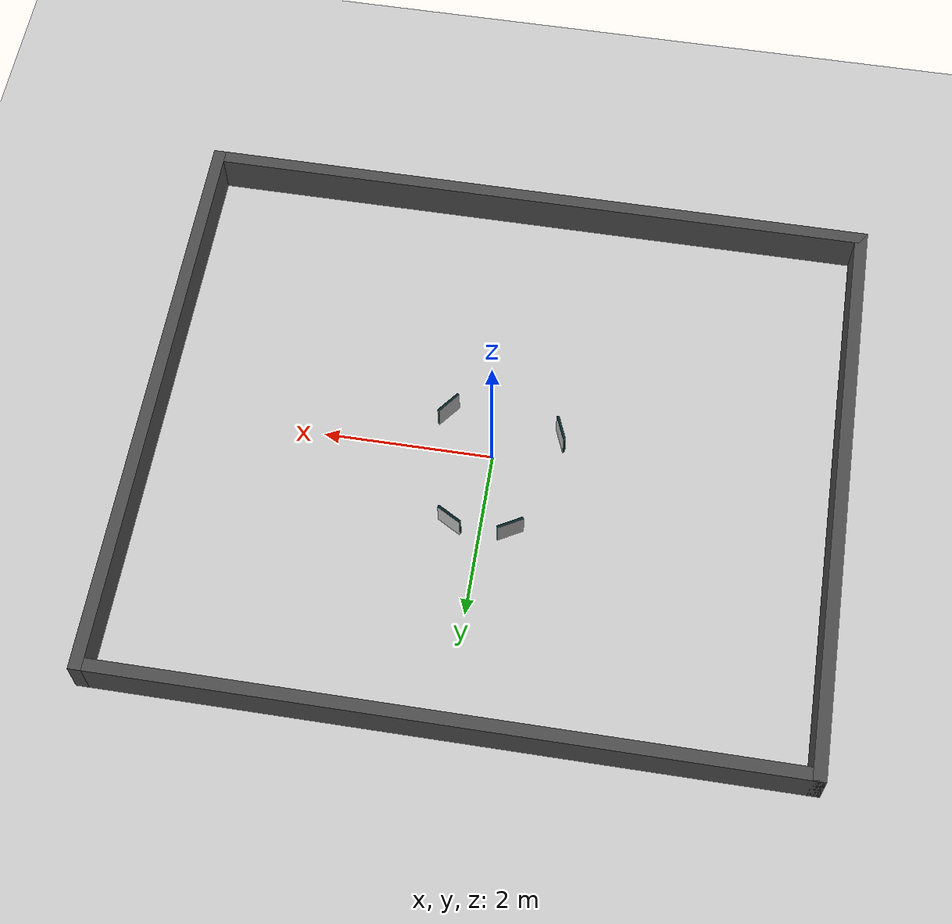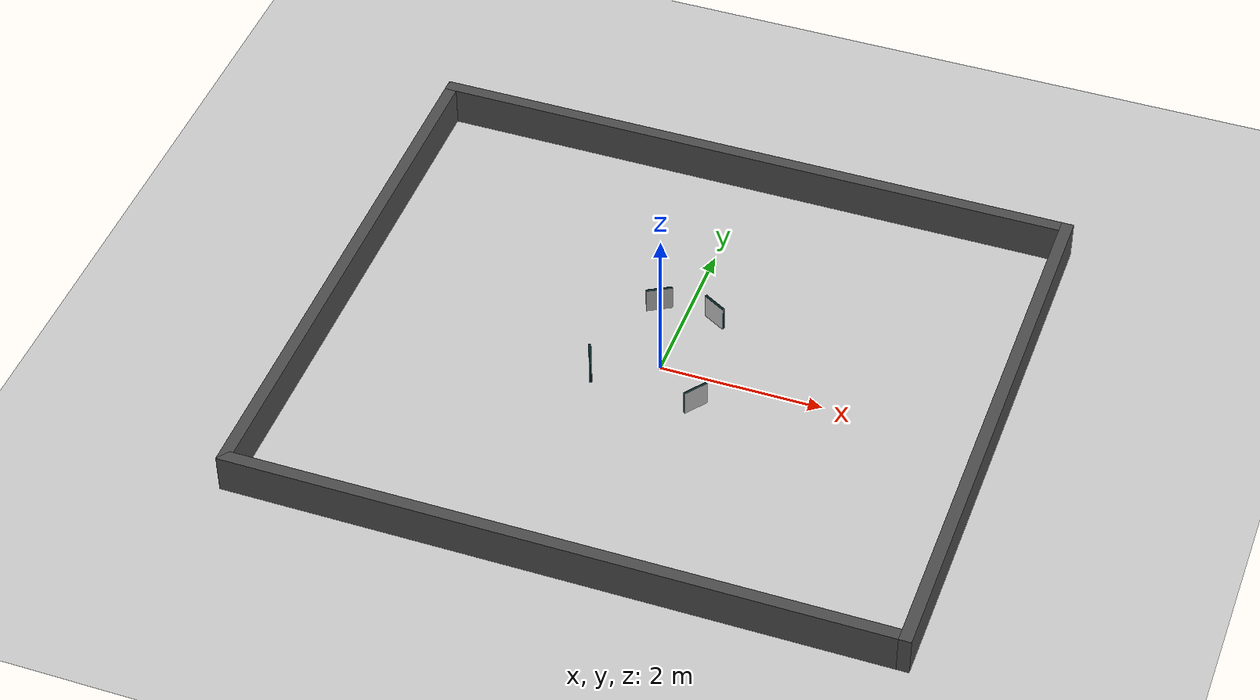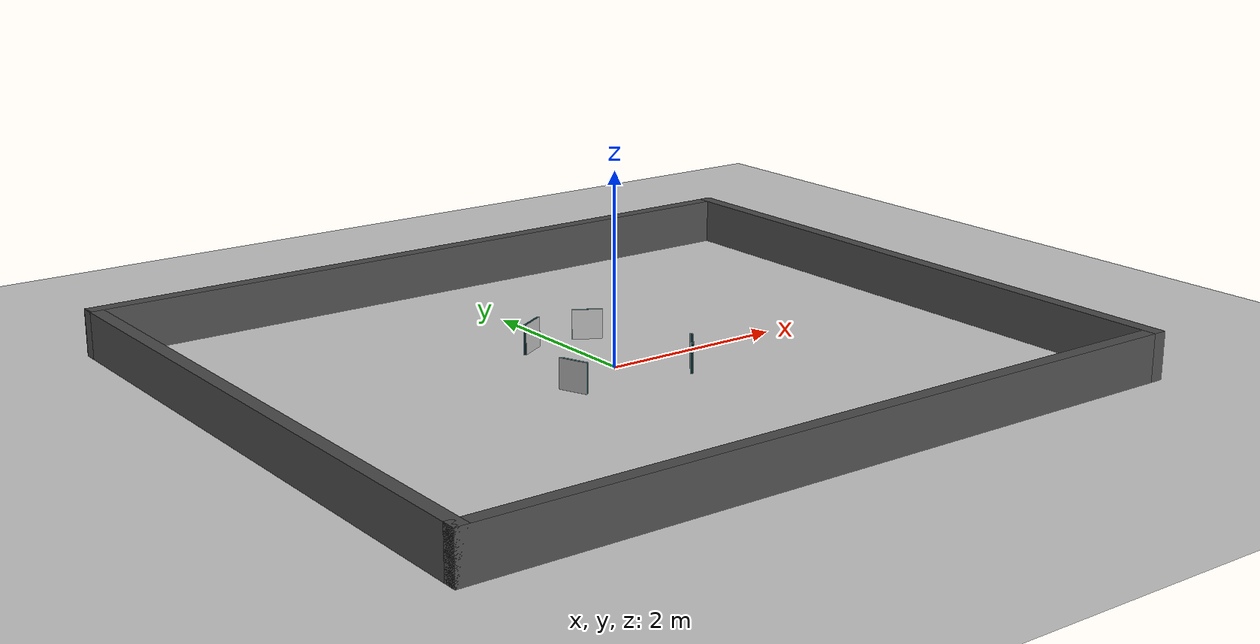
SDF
<sdf version="1.4">
  <world name="default">
    <scene>
      <ambient>0.8 0.8 0.8 1</ambient>
      <background>0.7 0.7 0.7 1</background>
      <shadows>true</shadows>
    </scene>

  <!-- A global light source  -->
    <include>
      <uri>model://sun</uri>
      <pose> -1.0 2.0 1.0 0 0 0</pose>
    </include>

  <!-- Piso da sala - circuito  e Paredes da Sala -->
    <include>
      <uri>model://ground_plane</uri> <!-- Piso plano sem nada - padrao do gazebo -->
    </include>
    <include>
      <uri>model://Walls/paredes_sala</uri>
      <pose> 4 0 0 0 0 0</pose>
    </include>
<!-- inicio da colagem dos blocos -->

<!-- Grupo 1 (0°) -->
<include>
  <uri>model://Yolo/wolf</uri>
  <name>wolf_1</name>
  <pose>-0.75 -0.35 0 0 0 -2.763631</pose>
</include>

<!-- Grupo 2 (60°) -->
<include>
  <uri>model://Yolo/cow</uri>
  <name>cow_1</name>
  <pose>0.35 0.95 0 0 0 1.048</pose>
</include>

<!-- Grupo 3 (120°) -->
<include>
  <uri>model://Yolo/bird</uri>
  <name>wolf_3</name>
  <pose>-0.35 0.95 0 0 0 2.094</pose>
</include>

<!-- Grupo 6 (300°) -->
<include>
  <uri>model://Yolo/bicycle</uri>
  <name>wolf_5</name>
  <pose>0.60 -0.48 0 0 0 2.4929</pose>
</include>

<!-- final da colagem dos blocos -->
    <physics type="ode">
      <real_time_update_rate>1000.0</real_time_update_rate>
      <max_step_size>0.001</max_step_size>
      <real_time_factor>1</real_time_factor>
      <ode>
        <solver>
          <type>quick</type>
          <iters>150</iters>
          <precon_iters>0</precon_iters>
          <sor>1.400000</sor>
          <use_dynamic_moi_rescaling>1</use_dynamic_moi_rescaling>
        </solver>
        <constraints>
          <cfm>0.00001</cfm>
          <erp>0.2</erp>
          <contact_max_correcting_vel>2000.000000</contact_max_correcting_vel>
          <contact_surface_layer>0.01000</contact_surface_layer>
        </constraints>
      </ode>
    </physics>

    <gui fullscreen='0'>
      <camera name='user_camera'>
        <pose frame=''>0.238775 -6.8831 10.8485 -0 0.979642 1.5602</pose>
        <view_controller>orbit</view_controller>
        <projection_type>perspective</projection_type>
      </camera>
    </gui>

  </world>

</sdf>

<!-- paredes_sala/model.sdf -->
<sdf version='1.7'>
  <model name='parede'>
    <link name='Wall_0'>
      <pose>-4.075 -3.425 0.25 0 0 0</pose>
      <self_collide>0</self_collide>
      <enable_wind>0</enable_wind>
      <kinematic>0</kinematic>
      <visual name='Wall_0_Visual'>
        <geometry>
          <box>
            <size>8 0.15 0.5</size>
          </box>
        </geometry>
        <material>
          <script>
            <uri>file://media/materials/scripts/gazebo.material</uri>
            <name>Gazebo/DarkGrey</name>
          </script>
          <ambient>0.5 0.5 0.5 1</ambient>
          <diffuse>1 1 1 1</diffuse>
          <specular>0.2 0.2 0.2 1</specular>
          <emissive>0 0 0 1</emissive>
          <shader type='pixel'/>
        </material>
      </visual>
      <collision name='Wall_0_Collision'>
        <laser_retro>0</laser_retro>
        <max_contacts>10</max_contacts>
        <geometry>
          <box>
            <size>8 0.15 0.5</size>
          </box>
        </geometry>
        <surface>
          <friction>
            <ode>
              <mu>1</mu>
              <mu2>1</mu2>
              <fdir1>0 0 0</fdir1>
              <slip1>0</slip1>
              <slip2>0</slip2>
            </ode>
            <torsional>
              <coefficient>1</coefficient>
              <patch_radius>0</patch_radius>
              <surface_radius>0</surface_radius>
              <use_patch_radius>1</use_patch_radius>
              <ode>
                <slip>0</slip>
              </ode>
            </torsional>
          </friction>
          <bounce>
            <restitution_coefficient>0</restitution_coefficient>
            <threshold>1e+06</threshold>
          </bounce>
          <contact>
            <collide_without_contact>0</collide_without_contact>
            <collide_without_contact_bitmask>1</collide_without_contact_bitmask>
            <collide_bitmask>1</collide_bitmask>
            <ode>
              <soft_cfm>0</soft_cfm>
              <soft_erp>0.2</soft_erp>
              <kp>1e+13</kp>
              <kd>1</kd>
              <max_vel>0.01</max_vel>
              <min_depth>0</min_depth>
            </ode>
            <bullet>
              <split_impulse>1</split_impulse>
              <split_impulse_penetration_threshold>-0.01</split_impulse_penetration_threshold>
              <soft_cfm>0</soft_cfm>
              <soft_erp>0.2</soft_erp>
              <kp>1e+13</kp>
              <kd>1</kd>
            </bullet>
          </contact>
        </surface>
      </collision>
    </link>
    <link name='Wall_1'>
      <pose>0 0 0.25 0 0 0</pose>
      <self_collide>0</self_collide>
      <kinematic>0</kinematic>
      <visual name='Wall_1_Visual'>
        <geometry>
          <box>
            <size>0.15 7 0.5</size>
          </box>
        </geometry>
        <material>
          <script>
            <uri>file://media/materials/scripts/gazebo.material</uri>
            <name>Gazebo/DarkGrey</name>
          </script>
          <ambient>0.5 0.5 0.5 1</ambient>
          <diffuse>1 1 1 1</diffuse>
          <specular>0.2 0.2 0.2 1</specular>
          <emissive>0 0 0 1</emissive>
        </material>
        <transparency>0</transparency>
        <cast_shadows>1</cast_shadows>
      </visual>
      <collision name='Wall_1_Collision'>
        <laser_retro>0</laser_retro>
        <max_contacts>10</max_contacts>
        <geometry>
          <box>
            <size>0.15 7 0.5</size>
          </box>
        </geometry>
        <surface>
          <friction>
            <ode>
              <mu>1</mu>
              <mu2>1</mu2>
              <fdir1>0 0 0</fdir1>
              <slip1>0</slip1>
              <slip2>0</slip2>
            </ode>
            <torsional>
              <coefficient>1</coefficient>
              <patch_radius>0</patch_radius>
              <surface_radius>0</surface_radius>
              <use_patch_radius>1</use_patch_radius>
              <ode>
                <slip>0</slip>
              </ode>
            </torsional>
          </friction>
          <bounce>
            <restitution_coefficient>0</restitution_coefficient>
            <threshold>1e+06</threshold>
          </bounce>
          <contact>
            <collide_without_contact>0</collide_without_contact>
            <collide_without_contact_bitmask>1</collide_without_contact_bitmask>
            <ode>
              <soft_cfm>0</soft_cfm>
              <soft_erp>0.2</soft_erp>
              <kp>1e+13</kp>
              <kd>1</kd>
              <max_vel>0.01</max_vel>
              <min_depth>0</min_depth>
            </ode>
            <bullet>
              <split_impulse>1</split_impulse>
              <split_impulse_penetration_threshold>-0.01</split_impulse_penetration_threshold>
              <soft_cfm>0</soft_cfm>
              <soft_erp>0.2</soft_erp>
              <kp>1e+13</kp>
              <kd>1</kd>
            </bullet>
          </contact>
        </surface>
      </collision>
    </link>
    <link name='Wall_2'>
      <pose>-8 0 0.25 0 0 0 0</pose>
      <self_collide>0</self_collide>
      <enable_wind>0</enable_wind>
      <kinematic>0</kinematic>
      <visual name='Wall_2_Visual'>
        <geometry>
          <box>
            <size>0.15 7 0.5</size>
          </box>
        </geometry>
        <material>
          <script>
            <uri>file://media/materials/scripts/gazebo.material</uri>
            <name>Gazebo/DarkGrey</name>
          </script>
          <ambient>0.5 0.5 0.5 1</ambient>
          <diffuse>1 1 1 1</diffuse>
          <specular>0.2 0.2 0.2 1</specular>
          <emissive>0 0 0 1</emissive>
          <shader type='pixel'/>
        </material>
        <meta>
          <layer>0</layer>
        </meta>
        <transparency>0</transparency>
        <cast_shadows>1</cast_shadows>
      </visual>
      <collision name='Wall_2_Collision'>
        <laser_retro>0</laser_retro>
        <max_contacts>10</max_contacts>
        <geometry>
          <box>
            <size>0.15 7 0.5</size>
          </box>
        </geometry>
        <surface>
          <friction>
            <ode>
              <mu>1</mu>
              <mu2>1</mu2>
              <fdir1>0 0 0</fdir1>
              <slip1>0</slip1>
              <slip2>0</slip2>
            </ode>
            <torsional>
              <coefficient>1</coefficient>
              <patch_radius>0</patch_radius>
              <surface_radius>0</surface_radius>
              <use_patch_radius>1</use_patch_radius>
              <ode>
                <slip>0</slip>
              </ode>
            </torsional>
          </friction>
          <bounce>
            <restitution_coefficient>0</restitution_coefficient>
            <threshold>1e+06</threshold>
          </bounce>
          <contact>
            <collide_without_contact>0</collide_without_contact>
            <collide_without_contact_bitmask>1</collide_without_contact_bitmask>
            <collide_bitmask>1</collide_bitmask>
            <ode>
              <soft_cfm>0</soft_cfm>
              <soft_erp>0.2</soft_erp>
              <kp>1e+13</kp>
              <kd>1</kd>
              <max_vel>0.01</max_vel>
              <min_depth>0</min_depth>
            </ode>
            <bullet>
              <split_impulse>1</split_impulse>
              <split_impulse_penetration_threshold>-0.01</split_impulse_penetration_threshold>
              <soft_cfm>0</soft_cfm>
              <soft_erp>0.2</soft_erp>
              <kp>1e+13</kp>
              <kd>1</kd>
            </bullet>
          </contact>
        </surface>
      </collision>
    </link>
    <link name='Wall_3'>
      <pose>-4.075 3.425 0.25 0 0 0</pose>
      <self_collide>0</self_collide>
      <enable_wind>0</enable_wind>
      <kinematic>0</kinematic>
      <visual name='Wall_3_Visual'>
        <geometry>
          <box>
            <size>8 0.15 0.5</size>
          </box>
        </geometry>
        <material>
          <script>
            <uri>file://media/materials/scripts/gazebo.material</uri>
            <name>Gazebo/DarkGrey</name>
          </script>
          <ambient>0.5 0.5 0.5 1</ambient>
          <diffuse>1 1 1 1</diffuse>
          <specular>0.2 0.2 0.2 1</specular>
          <emissive>0 0 0 1</emissive>
          <shader type='pixel'/>
        </material>
        <meta>
          <layer>0</layer>
        </meta>
        <transparency>0</transparency>
        <cast_shadows>1</cast_shadows>
      </visual>
      <collision name='Wall_3_Collision'>
        <laser_retro>0</laser_retro>
        <max_contacts>10</max_contacts>
        <geometry>
          <box>
            <size>8 0.15 0.5</size>
          </box>
        </geometry>
        <surface>
          <friction>
            <ode>
              <mu>1</mu>
              <mu2>1</mu2>
              <fdir1>0 0 0</fdir1>
              <slip1>0</slip1>
              <slip2>0</slip2>
            </ode>
            <torsional>
              <coefficient>1</coefficient>
              <patch_radius>0</patch_radius>
              <surface_radius>0</surface_radius>
              <use_patch_radius>1</use_patch_radius>
              <ode>
                <slip>0</slip>
              </ode>
            </torsional>
          </friction>
          <bounce>
            <restitution_coefficient>0</restitution_coefficient>
            <threshold>1e+06</threshold>
          </bounce>
          <contact>
            <collide_without_contact>0</collide_without_contact>
            <collide_without_contact_bitmask>1</collide_without_contact_bitmask>
            <collide_bitmask>1</collide_bitmask>
            <ode>
              <soft_cfm>0</soft_cfm>
              <soft_erp>0.2</soft_erp>
              <kp>1e+13</kp>
              <kd>1</kd>
              <max_vel>0.01</max_vel>
              <min_depth>0</min_depth>
            </ode>
            <bullet>
              <split_impulse>1</split_impulse>
              <split_impulse_penetration_threshold>-0.01</split_impulse_penetration_threshold>
              <soft_cfm>0</soft_cfm>
              <soft_erp>0.2</soft_erp>
              <kp>1e+13</kp>
              <kd>1</kd>
            </bullet>
          </contact>
        </surface>
      </collision>
    </link>
    <static>1</static>
    <allow_auto_disable>1</allow_auto_disable>
  </model>
</sdf>

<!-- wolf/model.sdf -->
<sdf version="1.6">
  <model name="wolf">
    <static>true</static>
    <link name="box">
      <pose>0 0 0 0 0 0</pose>
      <collision name="collision">
        <geometry>
          <mesh>
            <uri>model://Yolo/wolf/materials/textures/wolf.dae</uri>
            <scale>0.3 0.4 0.4</scale>
          </mesh>
        </geometry>
      </collision>
      <visual name="visual">
        <geometry>
          <mesh>
            <uri>model://Yolo/wolf/materials/textures/wolf.dae</uri>
            <scale>0.3 0.4 0.4</scale>
          </mesh>
        </geometry>
      </visual>
    </link>
  </model>
</sdf>

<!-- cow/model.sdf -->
<sdf version="1.6">
  <model name="cow">
    <static>true</static>
    <link name="box">
      <pose>0 0 0 0 0 0</pose>
      <collision name="collision">
        <geometry>
          <mesh>
            <uri>model://Yolo/cow/materials/textures/cow.dae</uri>
            <scale>0.3 0.4 0.4</scale>
          </mesh>
        </geometry>
      </collision>
      <visual name="visual">
        <geometry>
          <mesh>
            <uri>model://Yolo/cow/materials/textures/cow.dae</uri>
            <scale>0.3 0.4 0.4</scale>
          </mesh>
        </geometry>
      </visual>
    </link>
  </model>
</sdf>

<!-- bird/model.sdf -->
<sdf version="1.6">
  <model name="bird">
    <static>true</static>
    <link name="box">
      <pose>0 0 0 0 0 0</pose>
      <collision name="collision">
        <geometry>
          <mesh>
            <uri>model://Yolo/bird/materials/textures/bird.dae</uri>
            <scale>0.3 0.4 0.4</scale>
          </mesh>
        </geometry>
      </collision>
      <visual name="visual">
        <geometry>
          <mesh>
            <uri>model://Yolo/bird/materials/textures/bird.dae</uri>
            <scale>0.3 0.4 0.4</scale>
          </mesh>
        </geometry>
      </visual>
    </link>
  </model>
</sdf>

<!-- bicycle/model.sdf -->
<sdf version="1.6">
  <model name="bicycle">
    <static>true</static>
    <link name="box">
      <pose>0 0 0 0 0 0</pose>
      <collision name="collision">
        <geometry>
          <mesh>
            <uri>model://Yolo/bicycle/materials/textures/bicycle.dae</uri>
            <scale>0.3 0.4 0.4</scale>
          </mesh>
        </geometry>
      </collision>
      <visual name="visual">
        <geometry>
          <mesh>
            <uri>model://Yolo/bicycle/materials/textures/bicycle.dae</uri>
            <scale>0.3 0.4 0.4</scale>
          </mesh>
        </geometry>
      </visual>
    </link>
  </model>
</sdf>
